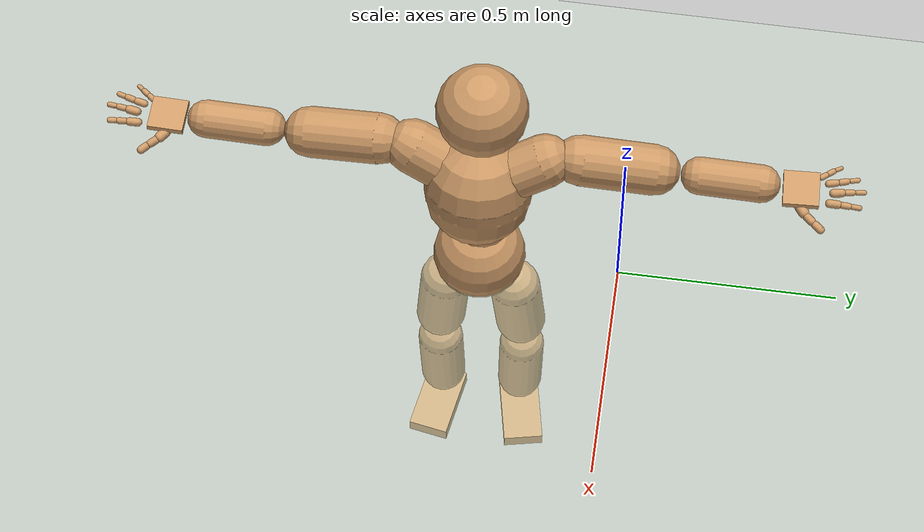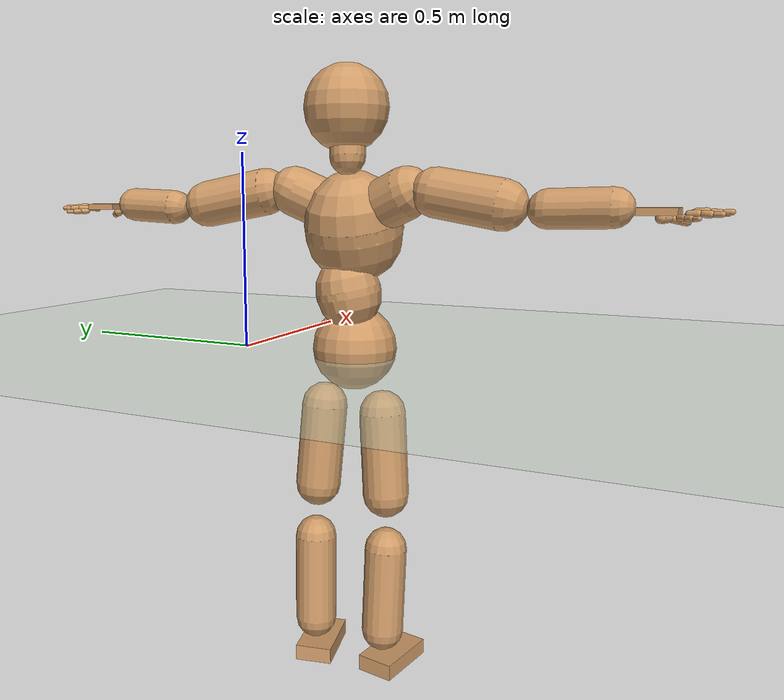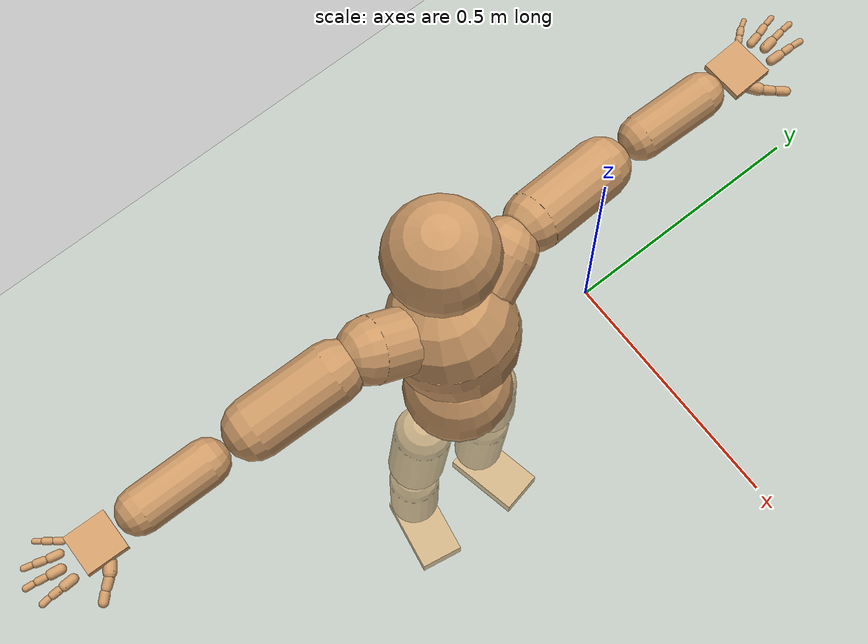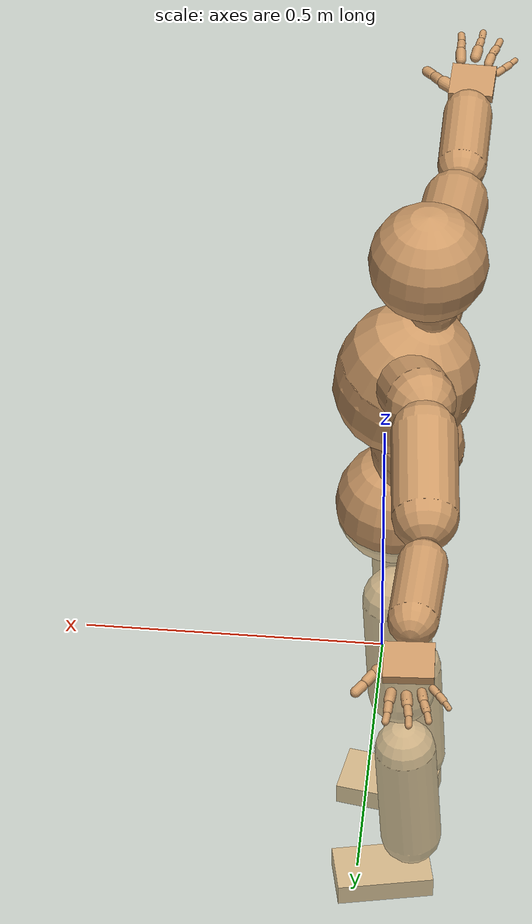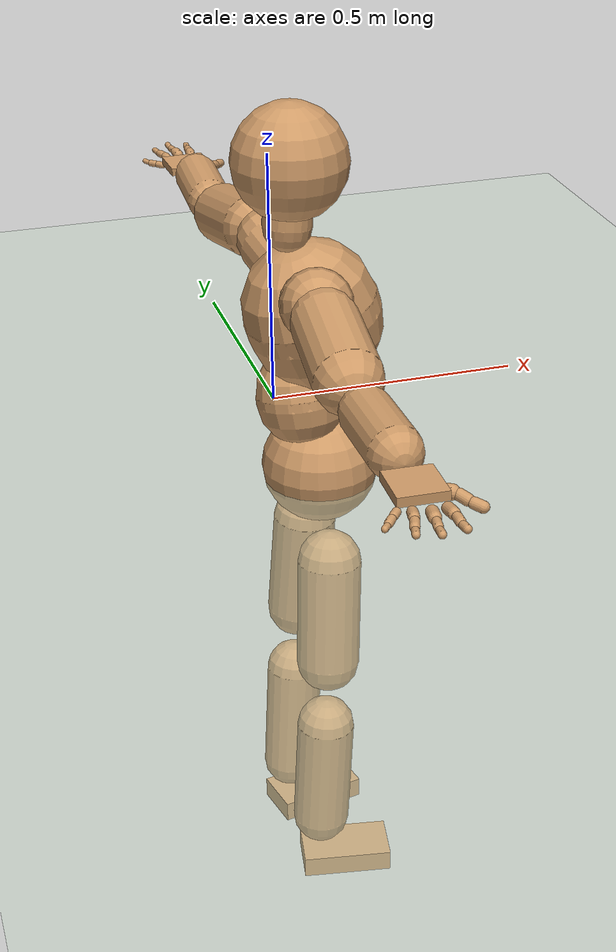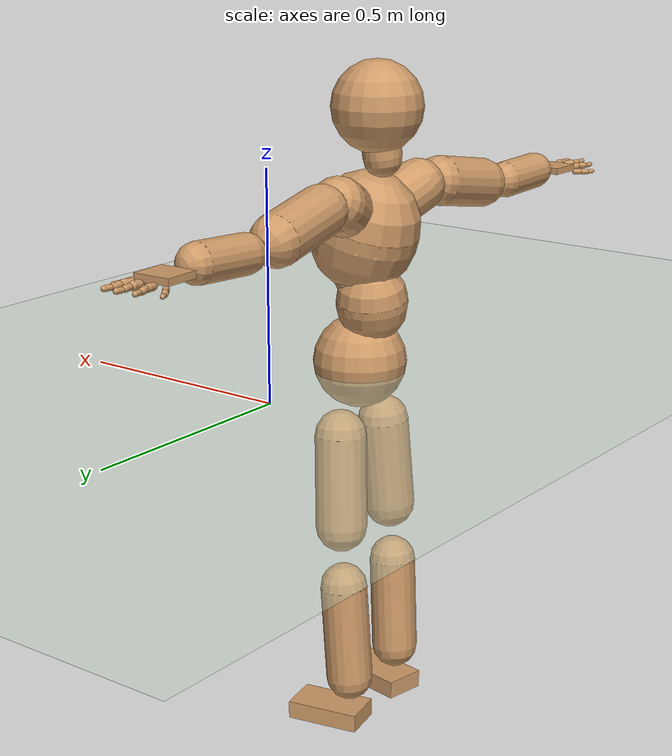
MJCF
<mujoco model="humanoid">
  <compiler coordinate="local" angle="radian"/>
  <default>
    <joint damping="0.0" armature="0.01" stiffness="0.0" limited="true"/>
    <geom conaffinity="1" condim="3" contype="7" margin="0.001" rgba="0.8 0.6 .4 1"/>
  </default>
  <asset>
    <texture type="skybox" builtin="gradient" rgb1=".4 .5 .6" rgb2="0 0 0" width="100" height="100"/>
    <texture builtin="flat" height="1278" mark="cross" markrgb="1 1 1" name="texgeom" random="0.01" rgb1="0.8 0.6 0.4" rgb2="0.8 0.6 0.4" type="cube" width="127"/>
    <texture builtin="checker" height="100" name="texplane" rgb1="0 0 0" rgb2="0.8 0.8 0.8" type="2d" width="100"/>
    <material name="MatPlane" reflectance="0.5" shininess="1" specular="1" texrepeat="60 60" texture="texplane"/>
    <material name="geom" texture="texgeom" texuniform="true"/>
  </asset>
  <worldbody>
    <light cutoff="100" diffuse="1 1 1" dir="-0 0 -1.3" directional="true" exponent="1" pos="0 0 1.3" specular=".1 .1 .1"/>
    <geom conaffinity="1" condim="3" name="floor" pos="0 0 0" rgba="0.8 0.9 0.8 1" size="100 100 .2" type="plane" material="MatPlane"/>
    <body name="Pelvis" pos="0.0006 -0.3182 0.0211">
      <freejoint name="Pelvis"/>
      <geom type="sphere" contype="1" conaffinity="1" density="500" size="0.1058" pos="0.0000 0.0000 0.0000" name="Pelvis"/>
      <body name="L_Hip" pos="-0.0026 0.0765 -0.0847">
        <joint name="L_Hip_x" type="hinge" pos="0 0 0" axis="1 0 0" stiffness="800" damping="80" armature="0.02" range="-180.0000 180.0000"/>
        <joint name="L_Hip_y" type="hinge" pos="0 0 0" axis="0 1 0" stiffness="800" damping="80" armature="0.02" range="-180.0000 180.0000"/>
        <joint name="L_Hip_z" type="hinge" pos="0 0 0" axis="0 0 1" stiffness="800" damping="80" armature="0.02" range="-180.0000 180.0000"/>
        <geom type="capsule" contype="1" conaffinity="1" density="500" fromto="-0.0042 0.0045 -0.0704 -0.0170 0.0181 -0.2816" size="0.0585" name="L_Hip"/>
        <body name="L_Knee" pos="-0.0212 0.0226 -0.352">
          <joint name="L_Knee_x" type="hinge" pos="0 0 0" axis="1 0 0" stiffness="800" damping="80" armature="0.02" range="-180.0000 180.0000"/>
          <joint name="L_Knee_y" type="hinge" pos="0 0 0" axis="0 1 0" stiffness="800" damping="80" armature="0.02" range="-180.0000 180.0000"/>
          <joint name="L_Knee_z" type="hinge" pos="0 0 0" axis="0 0 1" stiffness="800" damping="80" armature="0.02" range="-180.0000 180.0000"/>
          <geom type="capsule" contype="1" conaffinity="1" density="500" fromto="-0.0043 -0.0018 -0.0755 -0.0172 -0.0072 -0.3022" size="0.0538" name="L_Knee"/>
          <body name="L_Ankle" pos="-0.0215 -0.009 -0.3777">
            <joint name="L_Ankle_x" type="hinge" pos="0 0 0" axis="1 0 0" stiffness="800" damping="80" armature="0.02" range="-180.0000 180.0000"/>
            <joint name="L_Ankle_y" type="hinge" pos="0 0 0" axis="0 1 0" stiffness="800" damping="80" armature="0.02" range="-180.0000 180.0000"/>
            <joint name="L_Ankle_z" type="hinge" pos="0 0 0" axis="0 0 1" stiffness="800" damping="80" armature="0.02" range="-180.0000 180.0000"/>
            <geom type="box" contype="1" conaffinity="1" density="500" pos="0.0536 0.0112 -0.0215" size="0.0852 0.0478 0.0207" quat="0.9947 0.0000 0.0000 0.1028" name="L_Ankle"/>
            <body name="L_Toe" pos="0.1071 0.0224 -0.0429">
              <joint name="L_Toe_x" type="hinge" pos="0 0 0" axis="1 0 0" stiffness="500" damping="50" armature="0.02" range="-180.0000 180.0000"/>
              <joint name="L_Toe_y" type="hinge" pos="0 0 0" axis="0 1 0" stiffness="500" damping="50" armature="0.02" range="-180.0000 180.0000"/>
              <joint name="L_Toe_z" type="hinge" pos="0 0 0" axis="0 0 1" stiffness="500" damping="50" armature="0.02" range="-180.0000 180.0000"/>
              <geom type="box" contype="1" conaffinity="1" density="500" pos="0.0000 0.0000 0.0214" size="0.0009 0.0024 0.001" quat="0.9940 0.0000 0.0000 0.1097" name="L_Toe"/>
            </body>
          </body>
        </body>
      </body>
      <body name="R_Hip" pos="-0.0042 -0.0759 -0.0906">
        <joint name="R_Hip_x" type="hinge" pos="0 0 0" axis="1 0 0" stiffness="800" damping="80" armature="0.02" range="-180.0000 180.0000"/>
        <joint name="R_Hip_y" type="hinge" pos="0 0 0" axis="0 1 0" stiffness="800" damping="80" armature="0.02" range="-180.0000 180.0000"/>
        <joint name="R_Hip_z" type="hinge" pos="0 0 0" axis="0 0 1" stiffness="800" damping="80" armature="0.02" range="-180.0000 180.0000"/>
        <geom type="capsule" contype="1" conaffinity="1" density="500" fromto="-0.0030 -0.0053 -0.0697 -0.0119 -0.0212 -0.2786" size="0.0583" name="R_Hip"/>
        <body name="R_Knee" pos="-0.0149 -0.0265 -0.3483">
          <joint name="R_Knee_x" type="hinge" pos="0 0 0" axis="1 0 0" stiffness="800" damping="80" armature="0.02" range="-180.0000 180.0000"/>
          <joint name="R_Knee_y" type="hinge" pos="0 0 0" axis="0 1 0" stiffness="800" damping="80" armature="0.02" range="-180.0000 180.0000"/>
          <joint name="R_Knee_z" type="hinge" pos="0 0 0" axis="0 0 1" stiffness="800" damping="80" armature="0.02" range="-180.0000 180.0000"/>
          <geom type="capsule" contype="1" conaffinity="1" density="500" fromto="-0.0036 0.0007 -0.0738 -0.0143 0.0029 -0.2953" size="0.0538" name="R_Knee"/>
          <body name="R_Ankle" pos="-0.0179 0.0036 -0.3691">
            <joint name="R_Ankle_x" type="hinge" pos="0 0 0" axis="1 0 0" stiffness="800" damping="80" armature="0.02" range="-180.0000 180.0000"/>
            <joint name="R_Ankle_y" type="hinge" pos="0 0 0" axis="0 1 0" stiffness="800" damping="80" armature="0.02" range="-180.0000 180.0000"/>
            <joint name="R_Ankle_z" type="hinge" pos="0 0 0" axis="0 0 1" stiffness="800" damping="80" armature="0.02" range="-180.0000 180.0000"/>
            <geom type="box" contype="1" conaffinity="1" density="500" pos="0.0507 -0.0089 -0.0230" size="0.0852 0.0478 0.0207" quat="0.9962 0.0000 0.0000 -0.0873" name="R_Ankle"/>
            <body name="R_Toe" pos="0.1013 -0.0179 -0.046">
              <joint name="R_Toe_x" type="hinge" pos="0 0 0" axis="1 0 0" stiffness="500" damping="50" armature="0.02" range="-180.0000 180.0000"/>
              <joint name="R_Toe_y" type="hinge" pos="0 0 0" axis="0 1 0" stiffness="500" damping="50" armature="0.02" range="-180.0000 180.0000"/>
              <joint name="R_Toe_z" type="hinge" pos="0 0 0" axis="0 0 1" stiffness="500" damping="50" armature="0.02" range="-180.0000 180.0000"/>
              <geom type="box" contype="1" conaffinity="1" density="500" pos="0.0000 0.0000 0.0229" size="0.0009 0.0024 0.001" quat="0.9971 0.0000 0.0000 -0.0762" name="R_Toe"/>
            </body>
          </body>
        </body>
      </body>
      <body name="Torso" pos="-0.0309 -0.0065 0.0976">
        <joint name="Torso_x" type="hinge" pos="0 0 0" axis="1 0 0" stiffness="1000" damping="100" armature="0.02" range="-180.0000 180.0000"/>
        <joint name="Torso_y" type="hinge" pos="0 0 0" axis="0 1 0" stiffness="1000" damping="100" armature="0.02" range="-180.0000 180.0000"/>
        <joint name="Torso_z" type="hinge" pos="0 0 0" axis="0 0 1" stiffness="1000" damping="100" armature="0.02" range="-180.0000 180.0000"/>
        <geom type="capsule" contype="1" conaffinity="1" density="500" fromto="-0.0035 0.0096 0.0519 -0.0023 0.0064 0.0346" size="0.08" name="Torso"/>
        <body name="Spine" pos="-0.0058 0.016 0.0866">
          <joint name="Spine_x" type="hinge" pos="0 0 0" axis="1 0 0" stiffness="1000" damping="100" armature="0.02" range="-180.0000 180.0000"/>
          <joint name="Spine_y" type="hinge" pos="0 0 0" axis="0 1 0" stiffness="1000" damping="100" armature="0.02" range="-180.0000 180.0000"/>
          <joint name="Spine_z" type="hinge" pos="0 0 0" axis="0 0 1" stiffness="1000" damping="100" armature="0.02" range="-180.0000 180.0000"/>
          <geom type="capsule" contype="1" conaffinity="1" density="500" fromto="0.0289 -0.0061 0.0219 0.0193 -0.0041 0.0146" size="0.0672" name="Spine"/>
          <body name="Chest" pos="0.0482 -0.0102 0.0365">
            <joint name="Chest_x" type="hinge" pos="0 0 0" axis="1 0 0" stiffness="1000" damping="100" armature="0.02" range="-180.0000 180.0000"/>
            <joint name="Chest_y" type="hinge" pos="0 0 0" axis="0 1 0" stiffness="1000" damping="100" armature="0.02" range="-180.0000 180.0000"/>
            <joint name="Chest_z" type="hinge" pos="0 0 0" axis="0 0 1" stiffness="1000" damping="100" armature="0.02" range="-180.0000 180.0000"/>
            <geom type="capsule" contype="1" conaffinity="1" density="500" fromto="-0.0275 -0.0017 0.0918 -0.0183 -0.0012 0.0612" size="0.1201" name="Chest"/>
            <body name="Neck" pos="-0.0686 -0.0064 0.2136">
              <joint name="Neck_x" type="hinge" pos="0 0 0" axis="1 0 0" stiffness="500" damping="50" armature="0.02" range="-180.0000 180.0000"/>
              <joint name="Neck_y" type="hinge" pos="0 0 0" axis="0 1 0" stiffness="500" damping="50" armature="0.02" range="-180.0000 180.0000"/>
              <joint name="Neck_z" type="hinge" pos="0 0 0" axis="0 0 1" stiffness="500" damping="50" armature="0.02" range="-180.0000 180.0000"/>
              <geom type="capsule" contype="1" conaffinity="1" density="500" fromto="0.0022 0.0020 0.0274 0.0089 0.0078 0.1095" size="0.043" name="Neck"/>
              <body name="Head" pos="0.0111 0.0098 0.1369">
                <joint name="Head_x" type="hinge" pos="0 0 0" axis="1 0 0" stiffness="500" damping="50" armature="0.02" range="-180.0000 180.0000"/>
                <joint name="Head_y" type="hinge" pos="0 0 0" axis="0 1 0" stiffness="500" damping="50" armature="0.02" range="-180.0000 180.0000"/>
                <joint name="Head_z" type="hinge" pos="0 0 0" axis="0 0 1" stiffness="500" damping="50" armature="0.02" range="-180.0000 180.0000"/>
                <geom type="sphere" contype="1" conaffinity="1" density="500" size="0.1009" pos="0.0000 0.0000 0.0000" name="Head"/>
              </body>
            </body>
            <body name="L_Thorax" pos="-0.0307 0.0618 0.125">
              <joint name="L_Thorax_x" type="hinge" pos="0 0 0" axis="1 0 0" stiffness="500" damping="50" armature="0.02" range="-180.0000 180.0000"/>
              <joint name="L_Thorax_y" type="hinge" pos="0 0 0" axis="0 1 0" stiffness="500" damping="50" armature="0.02" range="-180.0000 180.0000"/>
              <joint name="L_Thorax_z" type="hinge" pos="0 0 0" axis="0 0 1" stiffness="500" damping="50" armature="0.02" range="-180.0000 180.0000"/>
              <geom type="capsule" contype="1" conaffinity="1" density="500" fromto="-0.0068 0.0198 0.0093 -0.0272 0.0794 0.0370" size="0.0601" name="L_Thorax"/>
              <body name="L_Shoulder" pos="-0.034 0.0992 0.0463">
                <joint name="L_Shoulder_x" type="hinge" pos="0 0 0" axis="1 0 0" stiffness="500" damping="50" armature="0.02" range="-180.0000 180.0000"/>
                <joint name="L_Shoulder_y" type="hinge" pos="0 0 0" axis="0 1 0" stiffness="500" damping="50" armature="0.02" range="-180.0000 180.0000"/>
                <joint name="L_Shoulder_z" type="hinge" pos="0 0 0" axis="0 0 1" stiffness="500" damping="50" armature="0.02" range="-180.0000 180.0000"/>
                <geom type="capsule" contype="1" conaffinity="1" density="500" fromto="-0.0049 0.0546 -0.0102 -0.0197 0.2183 -0.0410" size="0.0565" name="L_Shoulder"/>
                <body name="L_Elbow" pos="-0.0246 0.2729 -0.0512">
                  <joint name="L_Elbow_x" type="hinge" pos="0 0 0" axis="1 0 0" stiffness="500" damping="50" armature="0.02" range="-720.0000 720.0000"/>
                  <joint name="L_Elbow_y" type="hinge" pos="0 0 0" axis="0 1 0" stiffness="500" damping="50" armature="0.02" range="-720.0000 720.0000"/>
                  <joint name="L_Elbow_z" type="hinge" pos="0 0 0" axis="0 0 1" stiffness="500" damping="50" armature="0.02" range="-720.0000 720.0000"/>
                  <geom type="capsule" contype="1" conaffinity="1" density="500" fromto="0.0017 0.0449 0.0020 0.0067 0.1796 0.0079" size="0.0424" name="L_Elbow"/>
                  <body name="L_Wrist" pos="0.0084 0.2245 0.0098">
                    <joint name="L_Wrist_x" type="hinge" pos="0 0 0" axis="1 0 0" stiffness="300" damping="30" armature="0.02" range="-180.0000 180.0000"/>
                    <joint name="L_Wrist_y" type="hinge" pos="0 0 0" axis="0 1 0" stiffness="300" damping="30" armature="0.02" range="-180.0000 180.0000"/>
                    <joint name="L_Wrist_z" type="hinge" pos="0 0 0" axis="0 0 1" stiffness="300" damping="30" armature="0.02" range="-180.0000 180.0000"/>
                    <geom type="box" contype="1" conaffinity="1" density="500" pos="-0.0020 0.0429 -0.0079" size="0.0397 0.0415 0.0076" quat="0.7236 0.0000 0.0000 -0.6902" name="L_Wrist"/>
                    <body name="L_Index1" pos="0.0213 0.1008 -0.0134">
                      <joint name="L_Index1_x" type="hinge" pos="0 0 0" axis="1 0 0" stiffness="100" damping="10" armature="0.02" range="-180.0000 180.0000"/>
                      <joint name="L_Index1_y" type="hinge" pos="0 0 0" axis="0 1 0" stiffness="100" damping="10" armature="0.02" range="-180.0000 180.0000"/>
                      <joint name="L_Index1_z" type="hinge" pos="0 0 0" axis="0 0 1" stiffness="100" damping="10" armature="0.02" range="-180.0000 180.0000"/>
                      <geom type="capsule" contype="1" conaffinity="1" density="500" fromto="0.0005 0.0062 0.0006 0.0019 0.0248 0.0025" size="0.0092" name="L_Index1"/>
                      <body name="L_Index2" pos="0.0024 0.031 0.0031">
                        <joint name="L_Index2_x" type="hinge" pos="0 0 0" axis="1 0 0" stiffness="100" damping="10" armature="0.02" range="-180.0000 180.0000"/>
                        <joint name="L_Index2_y" type="hinge" pos="0 0 0" axis="0 1 0" stiffness="100" damping="10" armature="0.02" range="-180.0000 180.0000"/>
                        <joint name="L_Index2_z" type="hinge" pos="0 0 0" axis="0 0 1" stiffness="100" damping="10" armature="0.02" range="-180.0000 180.0000"/>
                        <geom type="capsule" contype="1" conaffinity="1" density="500" fromto="0.0000 0.0044 -0.0002 0.0002 0.0175 -0.0010" size="0.0075" name="L_Index2"/>
                        <body name="L_Index3" pos="0.0002 0.0218 -0.0012">
                          <joint name="L_Index3_x" type="hinge" pos="0 0 0" axis="1 0 0" stiffness="100" damping="10" armature="0.02" range="-180.0000 180.0000"/>
                          <joint name="L_Index3_y" type="hinge" pos="0 0 0" axis="0 1 0" stiffness="100" damping="10" armature="0.02" range="-180.0000 180.0000"/>
                          <joint name="L_Index3_z" type="hinge" pos="0 0 0" axis="0 0 1" stiffness="100" damping="10" armature="0.02" range="-180.0000 180.0000"/>
                          <geom type="capsule" contype="1" conaffinity="1" density="500" fromto="0.0004 0.0048 0.0002 0.0018 0.0191 0.0006" size="0.0062" name="L_Index3"/>
                        </body>
                      </body>
                    </body>
                    <body name="L_Middle1" pos="-0.0026 0.1079 -0.0107">
                      <joint name="L_Middle1_x" type="hinge" pos="0 0 0" axis="1 0 0" stiffness="100" damping="10" armature="0.02" range="-180.0000 180.0000"/>
                      <joint name="L_Middle1_y" type="hinge" pos="0 0 0" axis="0 1 0" stiffness="100" damping="10" armature="0.02" range="-180.0000 180.0000"/>
                      <joint name="L_Middle1_z" type="hinge" pos="0 0 0" axis="0 0 1" stiffness="100" damping="10" armature="0.02" range="-180.0000 180.0000"/>
                      <geom type="capsule" contype="1" conaffinity="1" density="500" fromto="-0.0008 0.0059 0.0003 -0.0033 0.0236 0.0013" size="0.0095" name="L_Middle1"/>
                      <body name="L_Middle2" pos="-0.0041 0.0295 0.0017">
                        <joint name="L_Middle2_x" type="hinge" pos="0 0 0" axis="1 0 0" stiffness="100" damping="10" armature="0.02" range="-180.0000 180.0000"/>
                        <joint name="L_Middle2_y" type="hinge" pos="0 0 0" axis="0 1 0" stiffness="100" damping="10" armature="0.02" range="-180.0000 180.0000"/>
                        <joint name="L_Middle2_z" type="hinge" pos="0 0 0" axis="0 0 1" stiffness="100" damping="10" armature="0.02" range="-180.0000 180.0000"/>
                        <geom type="capsule" contype="1" conaffinity="1" density="500" fromto="-0.0008 0.0046 -0.0001 -0.0031 0.0182 -0.0005" size="0.007" name="L_Middle2"/>
                        <body name="L_Middle3" pos="-0.0039 0.0228 -0.0007">
                          <joint name="L_Middle3_x" type="hinge" pos="0 0 0" axis="1 0 0" stiffness="100" damping="10" armature="0.02" range="-180.0000 180.0000"/>
                          <joint name="L_Middle3_y" type="hinge" pos="0 0 0" axis="0 1 0" stiffness="100" damping="10" armature="0.02" range="-180.0000 180.0000"/>
                          <joint name="L_Middle3_z" type="hinge" pos="0 0 0" axis="0 0 1" stiffness="100" damping="10" armature="0.02" range="-180.0000 180.0000"/>
                          <geom type="capsule" contype="1" conaffinity="1" density="500" fromto="-0.0004 0.0050 0.0003 -0.0015 0.0198 0.0011" size="0.0059" name="L_Middle3"/>
                        </body>
                      </body>
                    </body>
                    <body name="L_Pinky1" pos="-0.0415 0.0829 -0.0194">
                      <joint name="L_Pinky1_x" type="hinge" pos="0 0 0" axis="1 0 0" stiffness="100" damping="10" armature="0.02" range="-180.0000 180.0000"/>
                      <joint name="L_Pinky1_y" type="hinge" pos="0 0 0" axis="0 1 0" stiffness="100" damping="10" armature="0.02" range="-180.0000 180.0000"/>
                      <joint name="L_Pinky1_z" type="hinge" pos="0 0 0" axis="0 0 1" stiffness="100" damping="10" armature="0.02" range="-180.0000 180.0000"/>
                      <geom type="capsule" contype="1" conaffinity="1" density="500" fromto="-0.0024 0.0029 -0.0001 -0.0096 0.0118 -0.0004" size="0.0067" name="L_Pinky1"/>
                      <body name="L_Pinky2" pos="-0.0121 0.0147 -0.0005">
                        <joint name="L_Pinky2_x" type="hinge" pos="0 0 0" axis="1 0 0" stiffness="100" damping="10" armature="0.02" range="-180.0000 180.0000"/>
                        <joint name="L_Pinky2_y" type="hinge" pos="0 0 0" axis="0 1 0" stiffness="100" damping="10" armature="0.02" range="-180.0000 180.0000"/>
                        <joint name="L_Pinky2_z" type="hinge" pos="0 0 0" axis="0 0 1" stiffness="100" damping="10" armature="0.02" range="-180.0000 180.0000"/>
                        <geom type="capsule" contype="1" conaffinity="1" density="500" fromto="-0.0023 0.0030 -0.0002 -0.0092 0.0118 -0.0009" size="0.0066" name="L_Pinky2"/>
                        <body name="L_Pinky3" pos="-0.0115 0.0148 -0.0011">
                          <joint name="L_Pinky3_x" type="hinge" pos="0 0 0" axis="1 0 0" stiffness="100" damping="10" armature="0.02" range="-180.0000 180.0000"/>
                          <joint name="L_Pinky3_y" type="hinge" pos="0 0 0" axis="0 1 0" stiffness="100" damping="10" armature="0.02" range="-180.0000 180.0000"/>
                          <joint name="L_Pinky3_z" type="hinge" pos="0 0 0" axis="0 0 1" stiffness="100" damping="10" armature="0.02" range="-180.0000 180.0000"/>
                          <geom type="capsule" contype="1" conaffinity="1" density="500" fromto="-0.0019 0.0034 0.0002 -0.0076 0.0134 0.0007" size="0.0048" name="L_Pinky3"/>
                        </body>
                      </body>
                    </body>
                    <body name="L_Ring1" pos="-0.026 0.0961 -0.0137">
                      <joint name="L_Ring1_x" type="hinge" pos="0 0 0" axis="1 0 0" stiffness="100" damping="10" armature="0.02" range="-180.0000 180.0000"/>
                      <joint name="L_Ring1_y" type="hinge" pos="0 0 0" axis="0 1 0" stiffness="100" damping="10" armature="0.02" range="-180.0000 180.0000"/>
                      <joint name="L_Ring1_z" type="hinge" pos="0 0 0" axis="0 0 1" stiffness="100" damping="10" armature="0.02" range="-180.0000 180.0000"/>
                      <geom type="capsule" contype="1" conaffinity="1" density="500" fromto="-0.0011 0.0055 0.0004 -0.0045 0.0218 0.0016" size="0.0082" name="L_Ring1"/>
                      <body name="L_Ring2" pos="-0.0057 0.0273 0.002">
                        <joint name="L_Ring2_x" type="hinge" pos="0 0 0" axis="1 0 0" stiffness="100" damping="10" armature="0.02" range="-180.0000 180.0000"/>
                        <joint name="L_Ring2_y" type="hinge" pos="0 0 0" axis="0 1 0" stiffness="100" damping="10" armature="0.02" range="-180.0000 180.0000"/>
                        <joint name="L_Ring2_z" type="hinge" pos="0 0 0" axis="0 0 1" stiffness="100" damping="10" armature="0.02" range="-180.0000 180.0000"/>
                        <geom type="capsule" contype="1" conaffinity="1" density="500" fromto="-0.0014 0.0044 -0.0002 -0.0058 0.0176 -0.0009" size="0.0074" name="L_Ring2"/>
                        <body name="L_Ring3" pos="-0.0072 0.022 -0.0011">
                          <joint name="L_Ring3_x" type="hinge" pos="0 0 0" axis="1 0 0" stiffness="100" damping="10" armature="0.02" range="-180.0000 180.0000"/>
                          <joint name="L_Ring3_y" type="hinge" pos="0 0 0" axis="0 1 0" stiffness="100" damping="10" armature="0.02" range="-180.0000 180.0000"/>
                          <joint name="L_Ring3_z" type="hinge" pos="0 0 0" axis="0 0 1" stiffness="100" damping="10" armature="0.02" range="-180.0000 180.0000"/>
                          <geom type="capsule" contype="1" conaffinity="1" density="500" fromto="-0.0010 0.0048 0.0002 -0.0042 0.0192 0.0007" size="0.0056" name="L_Ring3"/>
                        </body>
                      </body>
                    </body>
                    <body name="L_Thumb1" pos="0.0285 0.0411 -0.0221">
                      <joint name="L_Thumb1_x" type="hinge" pos="0 0 0" axis="1 0 0" stiffness="100" damping="10" armature="0.02" range="-180.0000 180.0000"/>
                      <joint name="L_Thumb1_y" type="hinge" pos="0 0 0" axis="0 1 0" stiffness="100" damping="10" armature="0.02" range="-180.0000 180.0000"/>
                      <joint name="L_Thumb1_z" type="hinge" pos="0 0 0" axis="0 0 1" stiffness="100" damping="10" armature="0.02" range="-180.0000 180.0000"/>
                      <geom type="capsule" contype="1" conaffinity="1" density="500" fromto="0.0048 0.0033 0.0002 0.0192 0.0132 0.0007" size="0.0119" name="L_Thumb1"/>
                      <body name="L_Thumb2" pos="0.024 0.0165 0.0009">
                        <joint name="L_Thumb2_x" type="hinge" pos="0 0 0" axis="1 0 0" stiffness="100" damping="10" armature="0.02" range="-180.0000 180.0000"/>
                        <joint name="L_Thumb2_y" type="hinge" pos="0 0 0" axis="0 1 0" stiffness="100" damping="10" armature="0.02" range="-180.0000 180.0000"/>
                        <joint name="L_Thumb2_z" type="hinge" pos="0 0 0" axis="0 0 1" stiffness="100" damping="10" armature="0.02" range="-180.0000 180.0000"/>
                        <geom type="capsule" contype="1" conaffinity="1" density="500" fromto="0.0028 0.0039 -0.0012 0.0114 0.0156 -0.0048" size="0.0093" name="L_Thumb2"/>
                        <body name="L_Thumb3" pos="0.0142 0.0196 -0.006">
                          <joint name="L_Thumb3_x" type="hinge" pos="0 0 0" axis="1 0 0" stiffness="100" damping="10" armature="0.02" range="-180.0000 180.0000"/>
                          <joint name="L_Thumb3_y" type="hinge" pos="0 0 0" axis="0 1 0" stiffness="100" damping="10" armature="0.02" range="-180.0000 180.0000"/>
                          <joint name="L_Thumb3_z" type="hinge" pos="0 0 0" axis="0 0 1" stiffness="100" damping="10" armature="0.02" range="-180.0000 180.0000"/>
                          <geom type="capsule" contype="1" conaffinity="1" density="500" fromto="0.0032 0.0043 -0.0008 0.0130 0.0172 -0.0032" size="0.0089" name="L_Thumb3"/>
                        </body>
                      </body>
                    </body>
                  </body>
                </body>
              </body>
            </body>
            <body name="R_Thorax" pos="-0.0381 -0.064 0.1202">
              <joint name="R_Thorax_x" type="hinge" pos="0 0 0" axis="1 0 0" stiffness="500" damping="50" armature="0.02" range="-180.0000 180.0000"/>
              <joint name="R_Thorax_y" type="hinge" pos="0 0 0" axis="0 1 0" stiffness="500" damping="50" armature="0.02" range="-180.0000 180.0000"/>
              <joint name="R_Thorax_z" type="hinge" pos="0 0 0" axis="0 0 1" stiffness="500" damping="50" armature="0.02" range="-180.0000 180.0000"/>
              <geom type="capsule" contype="1" conaffinity="1" density="500" fromto="-0.0050 -0.0216 0.0094 -0.0201 -0.0863 0.0378" size="0.0613" name="R_Thorax"/>
              <body name="R_Shoulder" pos="-0.0251 -0.1078 0.0472">
                <joint name="R_Shoulder_x" type="hinge" pos="0 0 0" axis="1 0 0" stiffness="500" damping="50" armature="0.02" range="-180.0000 180.0000"/>
                <joint name="R_Shoulder_y" type="hinge" pos="0 0 0" axis="0 1 0" stiffness="500" damping="50" armature="0.02" range="-180.0000 180.0000"/>
                <joint name="R_Shoulder_z" type="hinge" pos="0 0 0" axis="0 0 1" stiffness="500" damping="50" armature="0.02" range="-180.0000 180.0000"/>
                <geom type="capsule" contype="1" conaffinity="1" density="500" fromto="-0.0036 -0.0525 -0.0088 -0.0145 -0.2101 -0.0351" size="0.057" name="R_Shoulder"/>
                <body name="R_Elbow" pos="-0.0181 -0.2626 -0.0439">
                  <joint name="R_Elbow_x" type="hinge" pos="0 0 0" axis="1 0 0" stiffness="500" damping="50" armature="0.02" range="-720.0000 720.0000"/>
                  <joint name="R_Elbow_y" type="hinge" pos="0 0 0" axis="0 1 0" stiffness="500" damping="50" armature="0.02" range="-720.0000 720.0000"/>
                  <joint name="R_Elbow_z" type="hinge" pos="0 0 0" axis="0 0 1" stiffness="500" damping="50" armature="0.02" range="-720.0000 720.0000"/>
                  <geom type="capsule" contype="1" conaffinity="1" density="500" fromto="-0.0002 -0.0450 0.0011 -0.0009 -0.1799 0.0043" size="0.0426" name="R_Elbow"/>
                  <body name="R_Wrist" pos="-0.0011 -0.2248 0.0054">
                    <joint name="R_Wrist_x" type="hinge" pos="0 0 0" axis="1 0 0" stiffness="300" damping="30" armature="0.02" range="-180.0000 180.0000"/>
                    <joint name="R_Wrist_y" type="hinge" pos="0 0 0" axis="0 1 0" stiffness="300" damping="30" armature="0.02" range="-180.0000 180.0000"/>
                    <joint name="R_Wrist_z" type="hinge" pos="0 0 0" axis="0 0 1" stiffness="300" damping="30" armature="0.02" range="-180.0000 180.0000"/>
                    <geom type="box" contype="1" conaffinity="1" density="500" pos="-0.0012 -0.0423 -0.0075" size="0.0397 0.0387 0.0078" quat="0.7172 0.0000 0.0000 0.6969" name="R_Wrist"/>
                    <body name="R_Index1" pos="0.0229 -0.0996 -0.0125">
                      <joint name="R_Index1_x" type="hinge" pos="0 0 0" axis="1 0 0" stiffness="100" damping="10" armature="0.02" range="-180.0000 180.0000"/>
                      <joint name="R_Index1_y" type="hinge" pos="0 0 0" axis="0 1 0" stiffness="100" damping="10" armature="0.02" range="-180.0000 180.0000"/>
                      <joint name="R_Index1_z" type="hinge" pos="0 0 0" axis="0 0 1" stiffness="100" damping="10" armature="0.02" range="-180.0000 180.0000"/>
                      <geom type="capsule" contype="1" conaffinity="1" density="500" fromto="0.0005 -0.0062 0.0006 0.0019 -0.0248 0.0025" size="0.0092" name="R_Index1"/>
                      <body name="R_Index2" pos="0.0024 -0.031 0.0031">
                        <joint name="R_Index2_x" type="hinge" pos="0 0 0" axis="1 0 0" stiffness="100" damping="10" armature="0.02" range="-180.0000 180.0000"/>
                        <joint name="R_Index2_y" type="hinge" pos="0 0 0" axis="0 1 0" stiffness="100" damping="10" armature="0.02" range="-180.0000 180.0000"/>
                        <joint name="R_Index2_z" type="hinge" pos="0 0 0" axis="0 0 1" stiffness="100" damping="10" armature="0.02" range="-180.0000 180.0000"/>
                        <geom type="capsule" contype="1" conaffinity="1" density="500" fromto="0.0000 -0.0044 -0.0002 0.0002 -0.0175 -0.0010" size="0.0075" name="R_Index2"/>
                        <body name="R_Index3" pos="0.0002 -0.0218 -0.0012">
                          <joint name="R_Index3_x" type="hinge" pos="0 0 0" axis="1 0 0" stiffness="100" damping="10" armature="0.02" range="-180.0000 180.0000"/>
                          <joint name="R_Index3_y" type="hinge" pos="0 0 0" axis="0 1 0" stiffness="100" damping="10" armature="0.02" range="-180.0000 180.0000"/>
                          <joint name="R_Index3_z" type="hinge" pos="0 0 0" axis="0 0 1" stiffness="100" damping="10" armature="0.02" range="-180.0000 180.0000"/>
                          <geom type="capsule" contype="1" conaffinity="1" density="500" fromto="0.0004 -0.0040 0.0002 0.0018 -0.0159 0.0006" size="0.0065" name="R_Index3"/>
                        </body>
                      </body>
                    </body>
                    <body name="R_Middle1" pos="-0.001 -0.1066 -0.0097">
                      <joint name="R_Middle1_x" type="hinge" pos="0 0 0" axis="1 0 0" stiffness="100" damping="10" armature="0.02" range="-180.0000 180.0000"/>
                      <joint name="R_Middle1_y" type="hinge" pos="0 0 0" axis="0 1 0" stiffness="100" damping="10" armature="0.02" range="-180.0000 180.0000"/>
                      <joint name="R_Middle1_z" type="hinge" pos="0 0 0" axis="0 0 1" stiffness="100" damping="10" armature="0.02" range="-180.0000 180.0000"/>
                      <geom type="capsule" contype="1" conaffinity="1" density="500" fromto="-0.0008 -0.0059 0.0003 -0.0033 -0.0236 0.0013" size="0.0095" name="R_Middle1"/>
                      <body name="R_Middle2" pos="-0.0041 -0.0295 0.0017">
                        <joint name="R_Middle2_x" type="hinge" pos="0 0 0" axis="1 0 0" stiffness="100" damping="10" armature="0.02" range="-180.0000 180.0000"/>
                        <joint name="R_Middle2_y" type="hinge" pos="0 0 0" axis="0 1 0" stiffness="100" damping="10" armature="0.02" range="-180.0000 180.0000"/>
                        <joint name="R_Middle2_z" type="hinge" pos="0 0 0" axis="0 0 1" stiffness="100" damping="10" armature="0.02" range="-180.0000 180.0000"/>
                        <geom type="capsule" contype="1" conaffinity="1" density="500" fromto="-0.0008 -0.0046 -0.0001 -0.0031 -0.0182 -0.0005" size="0.007" name="R_Middle2"/>
                        <body name="R_Middle3" pos="-0.0039 -0.0228 -0.0007">
                          <joint name="R_Middle3_x" type="hinge" pos="0 0 0" axis="1 0 0" stiffness="100" damping="10" armature="0.02" range="-180.0000 180.0000"/>
                          <joint name="R_Middle3_y" type="hinge" pos="0 0 0" axis="0 1 0" stiffness="100" damping="10" armature="0.02" range="-180.0000 180.0000"/>
                          <joint name="R_Middle3_z" type="hinge" pos="0 0 0" axis="0 0 1" stiffness="100" damping="10" armature="0.02" range="-180.0000 180.0000"/>
                          <geom type="capsule" contype="1" conaffinity="1" density="500" fromto="-0.0004 -0.0042 0.0003 -0.0015 -0.0166 0.0011" size="0.0061" name="R_Middle3"/>
                        </body>
                      </body>
                    </body>
                    <body name="R_Pinky1" pos="-0.0399 -0.0816 -0.0185">
                      <joint name="R_Pinky1_x" type="hinge" pos="0 0 0" axis="1 0 0" stiffness="100" damping="10" armature="0.02" range="-180.0000 180.0000"/>
                      <joint name="R_Pinky1_y" type="hinge" pos="0 0 0" axis="0 1 0" stiffness="100" damping="10" armature="0.02" range="-180.0000 180.0000"/>
                      <joint name="R_Pinky1_z" type="hinge" pos="0 0 0" axis="0 0 1" stiffness="100" damping="10" armature="0.02" range="-180.0000 180.0000"/>
                      <geom type="capsule" contype="1" conaffinity="1" density="500" fromto="-0.0024 -0.0029 -0.0001 -0.0096 -0.0118 -0.0004" size="0.0067" name="R_Pinky1"/>
                      <body name="R_Pinky2" pos="-0.012 -0.0147 -0.0005">
                        <joint name="R_Pinky2_x" type="hinge" pos="0 0 0" axis="1 0 0" stiffness="100" damping="10" armature="0.02" range="-180.0000 180.0000"/>
                        <joint name="R_Pinky2_y" type="hinge" pos="0 0 0" axis="0 1 0" stiffness="100" damping="10" armature="0.02" range="-180.0000 180.0000"/>
                        <joint name="R_Pinky2_z" type="hinge" pos="0 0 0" axis="0 0 1" stiffness="100" damping="10" armature="0.02" range="-180.0000 180.0000"/>
                        <geom type="capsule" contype="1" conaffinity="1" density="500" fromto="-0.0023 -0.0030 -0.0002 -0.0092 -0.0118 -0.0009" size="0.0066" name="R_Pinky2"/>
                        <body name="R_Pinky3" pos="-0.0115 -0.0148 -0.0011">
                          <joint name="R_Pinky3_x" type="hinge" pos="0 0 0" axis="1 0 0" stiffness="100" damping="10" armature="0.02" range="-180.0000 180.0000"/>
                          <joint name="R_Pinky3_y" type="hinge" pos="0 0 0" axis="0 1 0" stiffness="100" damping="10" armature="0.02" range="-180.0000 180.0000"/>
                          <joint name="R_Pinky3_z" type="hinge" pos="0 0 0" axis="0 0 1" stiffness="100" damping="10" armature="0.02" range="-180.0000 180.0000"/>
                          <geom type="capsule" contype="1" conaffinity="1" density="500" fromto="-0.0019 -0.0026 0.0002 -0.0076 -0.0102 0.0007" size="0.0051" name="R_Pinky3"/>
                        </body>
                      </body>
                    </body>
                    <body name="R_Ring1" pos="-0.0243 -0.0948 -0.0128">
                      <joint name="R_Ring1_x" type="hinge" pos="0 0 0" axis="1 0 0" stiffness="100" damping="10" armature="0.02" range="-180.0000 180.0000"/>
                      <joint name="R_Ring1_y" type="hinge" pos="0 0 0" axis="0 1 0" stiffness="100" damping="10" armature="0.02" range="-180.0000 180.0000"/>
                      <joint name="R_Ring1_z" type="hinge" pos="0 0 0" axis="0 0 1" stiffness="100" damping="10" armature="0.02" range="-180.0000 180.0000"/>
                      <geom type="capsule" contype="1" conaffinity="1" density="500" fromto="-0.0011 -0.0055 0.0004 -0.0045 -0.0218 0.0016" size="0.0082" name="R_Ring1"/>
                      <body name="R_Ring2" pos="-0.0057 -0.0273 0.002">
                        <joint name="R_Ring2_x" type="hinge" pos="0 0 0" axis="1 0 0" stiffness="100" damping="10" armature="0.02" range="-180.0000 180.0000"/>
                        <joint name="R_Ring2_y" type="hinge" pos="0 0 0" axis="0 1 0" stiffness="100" damping="10" armature="0.02" range="-180.0000 180.0000"/>
                        <joint name="R_Ring2_z" type="hinge" pos="0 0 0" axis="0 0 1" stiffness="100" damping="10" armature="0.02" range="-180.0000 180.0000"/>
                        <geom type="capsule" contype="1" conaffinity="1" density="500" fromto="-0.0014 -0.0044 -0.0002 -0.0058 -0.0176 -0.0009" size="0.0074" name="R_Ring2"/>
                        <body name="R_Ring3" pos="-0.0072 -0.022 -0.0011">
                          <joint name="R_Ring3_x" type="hinge" pos="0 0 0" axis="1 0 0" stiffness="100" damping="10" armature="0.02" range="-180.0000 180.0000"/>
                          <joint name="R_Ring3_y" type="hinge" pos="0 0 0" axis="0 1 0" stiffness="100" damping="10" armature="0.02" range="-180.0000 180.0000"/>
                          <joint name="R_Ring3_z" type="hinge" pos="0 0 0" axis="0 0 1" stiffness="100" damping="10" armature="0.02" range="-180.0000 180.0000"/>
                          <geom type="capsule" contype="1" conaffinity="1" density="500" fromto="-0.0010 -0.0040 0.0002 -0.0042 -0.0160 0.0007" size="0.0059" name="R_Ring3"/>
                        </body>
                      </body>
                    </body>
                    <body name="R_Thumb1" pos="0.0301 -0.0399 -0.0212">
                      <joint name="R_Thumb1_x" type="hinge" pos="0 0 0" axis="1 0 0" stiffness="100" damping="10" armature="0.02" range="-180.0000 180.0000"/>
                      <joint name="R_Thumb1_y" type="hinge" pos="0 0 0" axis="0 1 0" stiffness="100" damping="10" armature="0.02" range="-180.0000 180.0000"/>
                      <joint name="R_Thumb1_z" type="hinge" pos="0 0 0" axis="0 0 1" stiffness="100" damping="10" armature="0.02" range="-180.0000 180.0000"/>
                      <geom type="capsule" contype="1" conaffinity="1" density="500" fromto="0.0048 -0.0033 0.0002 0.0192 -0.0132 0.0007" size="0.0119" name="R_Thumb1"/>
                      <body name="R_Thumb2" pos="0.024 -0.0165 0.0009">
                        <joint name="R_Thumb2_x" type="hinge" pos="0 0 0" axis="1 0 0" stiffness="100" damping="10" armature="0.02" range="-180.0000 180.0000"/>
                        <joint name="R_Thumb2_y" type="hinge" pos="0 0 0" axis="0 1 0" stiffness="100" damping="10" armature="0.02" range="-180.0000 180.0000"/>
                        <joint name="R_Thumb2_z" type="hinge" pos="0 0 0" axis="0 0 1" stiffness="100" damping="10" armature="0.02" range="-180.0000 180.0000"/>
                        <geom type="capsule" contype="1" conaffinity="1" density="500" fromto="0.0028 -0.0039 -0.0012 0.0114 -0.0156 -0.0048" size="0.0093" name="R_Thumb2"/>
                        <body name="R_Thumb3" pos="0.0142 -0.0196 -0.006">
                          <joint name="R_Thumb3_x" type="hinge" pos="0 0 0" axis="1 0 0" stiffness="100" damping="10" armature="0.02" range="-180.0000 180.0000"/>
                          <joint name="R_Thumb3_y" type="hinge" pos="0 0 0" axis="0 1 0" stiffness="100" damping="10" armature="0.02" range="-180.0000 180.0000"/>
                          <joint name="R_Thumb3_z" type="hinge" pos="0 0 0" axis="0 0 1" stiffness="100" damping="10" armature="0.02" range="-180.0000 180.0000"/>
                          <geom type="capsule" contype="1" conaffinity="1" density="500" fromto="0.0032 -0.0035 -0.0008 0.0130 -0.0140 -0.0032" size="0.0091" name="R_Thumb3"/>
                        </body>
                      </body>
                    </body>
                  </body>
                </body>
              </body>
            </body>
          </body>
        </body>
      </body>
    </body>
  </worldbody>
  <actuator>
    <motor name="L_Hip_x" joint="L_Hip_x" gear="500"/>
    <motor name="L_Hip_y" joint="L_Hip_y" gear="500"/>
    <motor name="L_Hip_z" joint="L_Hip_z" gear="500"/>
    <motor name="L_Knee_x" joint="L_Knee_x" gear="500"/>
    <motor name="L_Knee_y" joint="L_Knee_y" gear="500"/>
    <motor name="L_Knee_z" joint="L_Knee_z" gear="500"/>
    <motor name="L_Ankle_x" joint="L_Ankle_x" gear="500"/>
    <motor name="L_Ankle_y" joint="L_Ankle_y" gear="500"/>
    <motor name="L_Ankle_z" joint="L_Ankle_z" gear="500"/>
    <motor name="L_Toe_x" joint="L_Toe_x" gear="500"/>
    <motor name="L_Toe_y" joint="L_Toe_y" gear="500"/>
    <motor name="L_Toe_z" joint="L_Toe_z" gear="500"/>
    <motor name="R_Hip_x" joint="R_Hip_x" gear="500"/>
    <motor name="R_Hip_y" joint="R_Hip_y" gear="500"/>
    <motor name="R_Hip_z" joint="R_Hip_z" gear="500"/>
    <motor name="R_Knee_x" joint="R_Knee_x" gear="500"/>
    <motor name="R_Knee_y" joint="R_Knee_y" gear="500"/>
    <motor name="R_Knee_z" joint="R_Knee_z" gear="500"/>
    <motor name="R_Ankle_x" joint="R_Ankle_x" gear="500"/>
    <motor name="R_Ankle_y" joint="R_Ankle_y" gear="500"/>
    <motor name="R_Ankle_z" joint="R_Ankle_z" gear="500"/>
    <motor name="R_Toe_x" joint="R_Toe_x" gear="500"/>
    <motor name="R_Toe_y" joint="R_Toe_y" gear="500"/>
    <motor name="R_Toe_z" joint="R_Toe_z" gear="500"/>
    <motor name="Torso_x" joint="Torso_x" gear="500"/>
    <motor name="Torso_y" joint="Torso_y" gear="500"/>
    <motor name="Torso_z" joint="Torso_z" gear="500"/>
    <motor name="Spine_x" joint="Spine_x" gear="500"/>
    <motor name="Spine_y" joint="Spine_y" gear="500"/>
    <motor name="Spine_z" joint="Spine_z" gear="500"/>
    <motor name="Chest_x" joint="Chest_x" gear="500"/>
    <motor name="Chest_y" joint="Chest_y" gear="500"/>
    <motor name="Chest_z" joint="Chest_z" gear="500"/>
    <motor name="Neck_x" joint="Neck_x" gear="500"/>
    <motor name="Neck_y" joint="Neck_y" gear="500"/>
    <motor name="Neck_z" joint="Neck_z" gear="500"/>
    <motor name="Head_x" joint="Head_x" gear="500"/>
    <motor name="Head_y" joint="Head_y" gear="500"/>
    <motor name="Head_z" joint="Head_z" gear="500"/>
    <motor name="L_Thorax_x" joint="L_Thorax_x" gear="500"/>
    <motor name="L_Thorax_y" joint="L_Thorax_y" gear="500"/>
    <motor name="L_Thorax_z" joint="L_Thorax_z" gear="500"/>
    <motor name="L_Shoulder_x" joint="L_Shoulder_x" gear="500"/>
    <motor name="L_Shoulder_y" joint="L_Shoulder_y" gear="500"/>
    <motor name="L_Shoulder_z" joint="L_Shoulder_z" gear="500"/>
    <motor name="L_Elbow_x" joint="L_Elbow_x" gear="500"/>
    <motor name="L_Elbow_y" joint="L_Elbow_y" gear="500"/>
    <motor name="L_Elbow_z" joint="L_Elbow_z" gear="500"/>
    <motor name="L_Wrist_x" joint="L_Wrist_x" gear="500"/>
    <motor name="L_Wrist_y" joint="L_Wrist_y" gear="500"/>
    <motor name="L_Wrist_z" joint="L_Wrist_z" gear="500"/>
    <motor name="L_Index1_x" joint="L_Index1_x" gear="500"/>
    <motor name="L_Index1_y" joint="L_Index1_y" gear="500"/>
    <motor name="L_Index1_z" joint="L_Index1_z" gear="500"/>
    <motor name="L_Index2_x" joint="L_Index2_x" gear="500"/>
    <motor name="L_Index2_y" joint="L_Index2_y" gear="500"/>
    <motor name="L_Index2_z" joint="L_Index2_z" gear="500"/>
    <motor name="L_Index3_x" joint="L_Index3_x" gear="500"/>
    <motor name="L_Index3_y" joint="L_Index3_y" gear="500"/>
    <motor name="L_Index3_z" joint="L_Index3_z" gear="500"/>
    <motor name="L_Middle1_x" joint="L_Middle1_x" gear="500"/>
    <motor name="L_Middle1_y" joint="L_Middle1_y" gear="500"/>
    <motor name="L_Middle1_z" joint="L_Middle1_z" gear="500"/>
    <motor name="L_Middle2_x" joint="L_Middle2_x" gear="500"/>
    <motor name="L_Middle2_y" joint="L_Middle2_y" gear="500"/>
    <motor name="L_Middle2_z" joint="L_Middle2_z" gear="500"/>
    <motor name="L_Middle3_x" joint="L_Middle3_x" gear="500"/>
    <motor name="L_Middle3_y" joint="L_Middle3_y" gear="500"/>
    <motor name="L_Middle3_z" joint="L_Middle3_z" gear="500"/>
    <motor name="L_Pinky1_x" joint="L_Pinky1_x" gear="500"/>
    <motor name="L_Pinky1_y" joint="L_Pinky1_y" gear="500"/>
    <motor name="L_Pinky1_z" joint="L_Pinky1_z" gear="500"/>
    <motor name="L_Pinky2_x" joint="L_Pinky2_x" gear="500"/>
    <motor name="L_Pinky2_y" joint="L_Pinky2_y" gear="500"/>
    <motor name="L_Pinky2_z" joint="L_Pinky2_z" gear="500"/>
    <motor name="L_Pinky3_x" joint="L_Pinky3_x" gear="500"/>
    <motor name="L_Pinky3_y" joint="L_Pinky3_y" gear="500"/>
    <motor name="L_Pinky3_z" joint="L_Pinky3_z" gear="500"/>
    <motor name="L_Ring1_x" joint="L_Ring1_x" gear="500"/>
    <motor name="L_Ring1_y" joint="L_Ring1_y" gear="500"/>
    <motor name="L_Ring1_z" joint="L_Ring1_z" gear="500"/>
    <motor name="L_Ring2_x" joint="L_Ring2_x" gear="500"/>
    <motor name="L_Ring2_y" joint="L_Ring2_y" gear="500"/>
    <motor name="L_Ring2_z" joint="L_Ring2_z" gear="500"/>
    <motor name="L_Ring3_x" joint="L_Ring3_x" gear="500"/>
    <motor name="L_Ring3_y" joint="L_Ring3_y" gear="500"/>
    <motor name="L_Ring3_z" joint="L_Ring3_z" gear="500"/>
    <motor name="L_Thumb1_x" joint="L_Thumb1_x" gear="500"/>
    <motor name="L_Thumb1_y" joint="L_Thumb1_y" gear="500"/>
    <motor name="L_Thumb1_z" joint="L_Thumb1_z" gear="500"/>
    <motor name="L_Thumb2_x" joint="L_Thumb2_x" gear="500"/>
    <motor name="L_Thumb2_y" joint="L_Thumb2_y" gear="500"/>
    <motor name="L_Thumb2_z" joint="L_Thumb2_z" gear="500"/>
    <motor name="L_Thumb3_x" joint="L_Thumb3_x" gear="500"/>
    <motor name="L_Thumb3_y" joint="L_Thumb3_y" gear="500"/>
    <motor name="L_Thumb3_z" joint="L_Thumb3_z" gear="500"/>
    <motor name="R_Thorax_x" joint="R_Thorax_x" gear="500"/>
    <motor name="R_Thorax_y" joint="R_Thorax_y" gear="500"/>
    <motor name="R_Thorax_z" joint="R_Thorax_z" gear="500"/>
    <motor name="R_Shoulder_x" joint="R_Shoulder_x" gear="500"/>
    <motor name="R_Shoulder_y" joint="R_Shoulder_y" gear="500"/>
    <motor name="R_Shoulder_z" joint="R_Shoulder_z" gear="500"/>
    <motor name="R_Elbow_x" joint="R_Elbow_x" gear="500"/>
    <motor name="R_Elbow_y" joint="R_Elbow_y" gear="500"/>
    <motor name="R_Elbow_z" joint="R_Elbow_z" gear="500"/>
    <motor name="R_Wrist_x" joint="R_Wrist_x" gear="500"/>
    <motor name="R_Wrist_y" joint="R_Wrist_y" gear="500"/>
    <motor name="R_Wrist_z" joint="R_Wrist_z" gear="500"/>
    <motor name="R_Index1_x" joint="R_Index1_x" gear="500"/>
    <motor name="R_Index1_y" joint="R_Index1_y" gear="500"/>
    <motor name="R_Index1_z" joint="R_Index1_z" gear="500"/>
    <motor name="R_Index2_x" joint="R_Index2_x" gear="500"/>
    <motor name="R_Index2_y" joint="R_Index2_y" gear="500"/>
    <motor name="R_Index2_z" joint="R_Index2_z" gear="500"/>
    <motor name="R_Index3_x" joint="R_Index3_x" gear="500"/>
    <motor name="R_Index3_y" joint="R_Index3_y" gear="500"/>
    <motor name="R_Index3_z" joint="R_Index3_z" gear="500"/>
    <motor name="R_Middle1_x" joint="R_Middle1_x" gear="500"/>
    <motor name="R_Middle1_y" joint="R_Middle1_y" gear="500"/>
    <motor name="R_Middle1_z" joint="R_Middle1_z" gear="500"/>
    <motor name="R_Middle2_x" joint="R_Middle2_x" gear="500"/>
    <motor name="R_Middle2_y" joint="R_Middle2_y" gear="500"/>
    <motor name="R_Middle2_z" joint="R_Middle2_z" gear="500"/>
    <motor name="R_Middle3_x" joint="R_Middle3_x" gear="500"/>
    <motor name="R_Middle3_y" joint="R_Middle3_y" gear="500"/>
    <motor name="R_Middle3_z" joint="R_Middle3_z" gear="500"/>
    <motor name="R_Pinky1_x" joint="R_Pinky1_x" gear="500"/>
    <motor name="R_Pinky1_y" joint="R_Pinky1_y" gear="500"/>
    <motor name="R_Pinky1_z" joint="R_Pinky1_z" gear="500"/>
    <motor name="R_Pinky2_x" joint="R_Pinky2_x" gear="500"/>
    <motor name="R_Pinky2_y" joint="R_Pinky2_y" gear="500"/>
    <motor name="R_Pinky2_z" joint="R_Pinky2_z" gear="500"/>
    <motor name="R_Pinky3_x" joint="R_Pinky3_x" gear="500"/>
    <motor name="R_Pinky3_y" joint="R_Pinky3_y" gear="500"/>
    <motor name="R_Pinky3_z" joint="R_Pinky3_z" gear="500"/>
    <motor name="R_Ring1_x" joint="R_Ring1_x" gear="500"/>
    <motor name="R_Ring1_y" joint="R_Ring1_y" gear="500"/>
    <motor name="R_Ring1_z" joint="R_Ring1_z" gear="500"/>
    <motor name="R_Ring2_x" joint="R_Ring2_x" gear="500"/>
    <motor name="R_Ring2_y" joint="R_Ring2_y" gear="500"/>
    <motor name="R_Ring2_z" joint="R_Ring2_z" gear="500"/>
    <motor name="R_Ring3_x" joint="R_Ring3_x" gear="500"/>
    <motor name="R_Ring3_y" joint="R_Ring3_y" gear="500"/>
    <motor name="R_Ring3_z" joint="R_Ring3_z" gear="500"/>
    <motor name="R_Thumb1_x" joint="R_Thumb1_x" gear="500"/>
    <motor name="R_Thumb1_y" joint="R_Thumb1_y" gear="500"/>
    <motor name="R_Thumb1_z" joint="R_Thumb1_z" gear="500"/>
    <motor name="R_Thumb2_x" joint="R_Thumb2_x" gear="500"/>
    <motor name="R_Thumb2_y" joint="R_Thumb2_y" gear="500"/>
    <motor name="R_Thumb2_z" joint="R_Thumb2_z" gear="500"/>
    <motor name="R_Thumb3_x" joint="R_Thumb3_x" gear="500"/>
    <motor name="R_Thumb3_y" joint="R_Thumb3_y" gear="500"/>
    <motor name="R_Thumb3_z" joint="R_Thumb3_z" gear="500"/>
  </actuator>
  <contact>
    <exclude body1="Torso" body2="Chest"/>
    <exclude body1="Head" body2="Chest"/>
    <exclude body1="R_Knee" body2="R_Toe"/>
    <exclude body1="R_Knee" body2="L_Ankle"/>
    <exclude body1="R_Knee" body2="L_Toe"/>
    <exclude body1="L_Knee" body2="L_Toe"/>
    <exclude body1="L_Knee" body2="R_Ankle"/>
    <exclude body1="L_Knee" body2="R_Toe"/>
    <exclude body1="L_Shoulder" body2="Chest"/>
    <exclude body1="R_Shoulder" body2="Chest"/>
  </contact>
  <sensor/>
  <size njmax="700" nconmax="700"/>
</mujoco>
